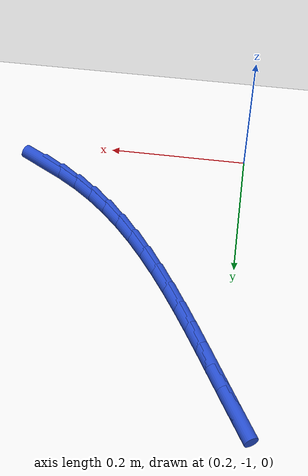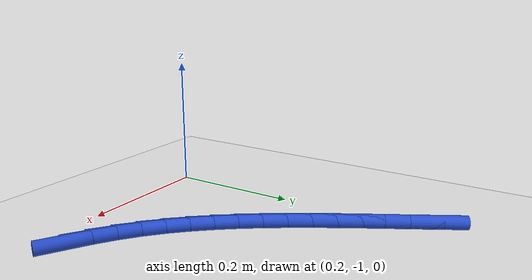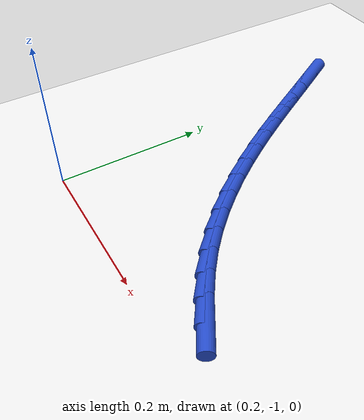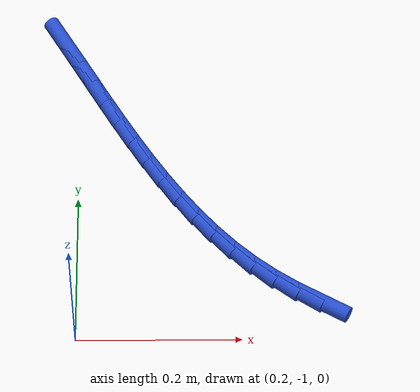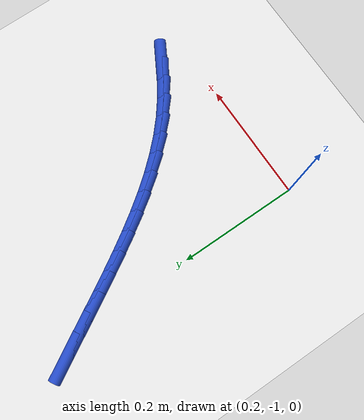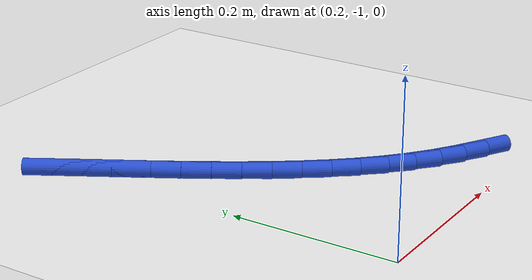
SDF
<sdf version="1.6">
 <world name="default">
  <model name="ground_plane">
   <static>1</static>
   <link name="link">
    <collision name="collision">
     <geometry><plane><normal>0 0 1</normal><size>100 100</size></plane></geometry>
     <surface><friction><ode><mu>100</mu><mu2>50</mu2></ode></friction></surface>
    </collision>
    <visual name="visual">
     <cast_shadows>0</cast_shadows>
     <geometry><plane><normal>0 0 1</normal><size>100 100</size></plane></geometry>
     <material>
      <script><uri>file://media/materials/scripts/gazebo.material</uri><name>Gazebo/WhiteGlow</name></script>
     </material>
    </visual>
   </link>
  </model>
  <model name="line">
   <link name="link_167">
    <pose>0.49299185647787175 -0.9524703437192823 0.01 0 1.57 -0.5233689117288747</pose>
    <collision name="collision">
     <geometry><cylinder><radius>0.01</radius><length>0.08</length></cylinder></geometry>
    </collision>
    <visual name="visual">
     <material>
      <script><name>Gazebo/Blue</name><uri>file://media/materials/scripts/gazebo.material</uri></script>
     </material>
     <geometry><cylinder><radius>0.01</radius><length>0.08</length></cylinder></geometry>
    </visual>
   </link>
   <link name="link_168">
    <pose>0.46502220504970393 -0.9363306290838186 0.01 0 1.57 -0.5859330448053706</pose>
    <collision name="collision">
     <geometry><cylinder><radius>0.01</radius><length>0.08</length></cylinder></geometry>
    </collision>
    <visual name="visual">
     <material>
      <script><name>Gazebo/Blue</name><uri>file://media/materials/scripts/gazebo.material</uri></script>
     </material>
     <geometry><cylinder><radius>0.01</radius><length>0.08</length></cylinder></geometry>
    </visual>
   </link>
   <link name="link_169">
    <pose>0.4383010119840826 -0.9185962697649118 0.01 0 1.57 -0.6582926510266706</pose>
    <collision name="collision">
     <geometry><cylinder><radius>0.01</radius><length>0.08</length></cylinder></geometry>
    </collision>
    <visual name="visual">
     <material>
      <script><name>Gazebo/Blue</name><uri>file://media/materials/scripts/gazebo.material</uri></script>
     </material>
     <geometry><cylinder><radius>0.01</radius><length>0.08</length></cylinder></geometry>
    </visual>
   </link>
   <link name="link_170">
    <pose>0.4129383690495716 -0.8989814921177905 0.01 0 1.57 -0.7319237376201629</pose>
    <collision name="collision">
     <geometry><cylinder><radius>0.01</radius><length>0.08</length></cylinder></geometry>
    </collision>
    <visual name="visual">
     <material>
      <script><name>Gazebo/Blue</name><uri>file://media/materials/scripts/gazebo.material</uri></script>
     </material>
     <geometry><cylinder><radius>0.01</radius><length>0.08</length></cylinder></geometry>
    </visual>
   </link>
   <link name="link_171">
    <pose>0.3889388151313444 -0.8774205827038444 0.01 0 1.57 -0.7976764309506431</pose>
    <collision name="collision">
     <geometry><cylinder><radius>0.01</radius><length>0.08</length></cylinder></geometry>
    </collision>
    <visual name="visual">
     <material>
      <script><name>Gazebo/Blue</name><uri>file://media/materials/scripts/gazebo.material</uri></script>
     </material>
     <geometry><cylinder><radius>0.01</radius><length>0.08</length></cylinder></geometry>
    </visual>
   </link>
   <link name="link_172">
    <pose>0.3661852921539589 -0.8541013375231675 0.01 0 1.57 -0.8550481111767014</pose>
    <collision name="collision">
     <geometry><cylinder><radius>0.01</radius><length>0.08</length></cylinder></geometry>
    </collision>
    <visual name="visual">
     <material>
      <script><name>Gazebo/Blue</name><uri>file://media/materials/scripts/gazebo.material</uri></script>
     </material>
     <geometry><cylinder><radius>0.01</radius><length>0.08</length></cylinder></geometry>
    </visual>
   </link>
   <link name="link_173">
    <pose>0.3445540076250147 -0.8292255927151324 0.01 0 1.57 -0.9042797048978861</pose>
    <collision name="collision">
     <geometry><cylinder><radius>0.01</radius><length>0.08</length></cylinder></geometry>
    </collision>
    <visual name="visual">
     <material>
      <script><name>Gazebo/Blue</name><uri>file://media/materials/scripts/gazebo.material</uri></script>
     </material>
     <geometry><cylinder><radius>0.01</radius><length>0.08</length></cylinder></geometry>
    </visual>
   </link>
   <link name="link_174">
    <pose>0.3239211690521116 -0.8029951844191124 0.01 0 1.57 -0.9457577411286796</pose>
    <collision name="collision">
     <geometry><cylinder><radius>0.01</radius><length>0.08</length></cylinder></geometry>
    </collision>
    <visual name="visual">
     <material>
      <script><name>Gazebo/Blue</name><uri>file://media/materials/scripts/gazebo.material</uri></script>
     </material>
     <geometry><cylinder><radius>0.01</radius><length>0.08</length></cylinder></geometry>
    </visual>
   </link>
   <link name="link_175">
    <pose>0.30416298394284946 -0.7756119487744813 0.01 0 1.57 -0.9799200001994263</pose>
    <collision name="collision">
     <geometry><cylinder><radius>0.01</radius><length>0.08</length></cylinder></geometry>
    </collision>
    <visual name="visual">
     <material>
      <script><name>Gazebo/Blue</name><uri>file://media/materials/scripts/gazebo.material</uri></script>
     </material>
     <geometry><cylinder><radius>0.01</radius><length>0.08</length></cylinder></geometry>
    </visual>
   </link>
   <link name="link_176">
    <pose>0.2851556598048278 -0.7472777219206115 0.01 0 1.57 -1.0071899854872963</pose>
    <collision name="collision">
     <geometry><cylinder><radius>0.01</radius><length>0.08</length></cylinder></geometry>
    </collision>
    <visual name="visual">
     <material>
      <script><name>Gazebo/Blue</name><uri>file://media/materials/scripts/gazebo.material</uri></script>
     </material>
     <geometry><cylinder><radius>0.01</radius><length>0.08</length></cylinder></geometry>
    </visual>
   </link>
   <link name="link_177">
    <pose>0.26677540414564666 -0.7181943399968769 0.01 0 1.57 -1.02793464211569</pose>
    <collision name="collision">
     <geometry><cylinder><radius>0.01</radius><length>0.08</length></cylinder></geometry>
    </collision>
    <visual name="visual">
     <material>
      <script><name>Gazebo/Blue</name><uri>file://media/materials/scripts/gazebo.material</uri></script>
     </material>
     <geometry><cylinder><radius>0.01</radius><length>0.08</length></cylinder></geometry>
    </visual>
   </link>
   <link name="link_178">
    <pose>0.24889842447290556 -0.6885636391426503 0.01 0 1.57 -1.0424384491583016</pose>
    <collision name="collision">
     <geometry><cylinder><radius>0.01</radius><length>0.08</length></cylinder></geometry>
    </collision>
    <visual name="visual">
     <material>
      <script><name>Gazebo/Blue</name><uri>file://media/materials/scripts/gazebo.material</uri></script>
     </material>
     <geometry><cylinder><radius>0.01</radius><length>0.08</length></cylinder></geometry>
    </visual>
   </link>
   <link name="link_179">
    <pose>0.23140092829420428 -0.658587455497305 0.01 0 1.57 -1.0508878451054124</pose>
    <collision name="collision">
     <geometry><cylinder><radius>0.01</radius><length>0.08</length></cylinder></geometry>
    </collision>
    <visual name="visual">
     <material>
      <script><name>Gazebo/Blue</name><uri>file://media/materials/scripts/gazebo.material</uri></script>
     </material>
     <geometry><cylinder><radius>0.01</radius><length>0.08</length></cylinder></geometry>
    </visual>
   </link>
   <link name="link_180">
    <pose>0.21415912311714255 -0.628467625200214 0.01 0 1.57 -1.0533614550405648</pose>
    <collision name="collision">
     <geometry><cylinder><radius>0.01</radius><length>0.08</length></cylinder></geometry>
    </collision>
    <visual name="visual">
     <material>
      <script><name>Gazebo/Blue</name><uri>file://media/materials/scripts/gazebo.material</uri></script>
     </material>
     <geometry><cylinder><radius>0.01</radius><length>0.08</length></cylinder></geometry>
    </visual>
   </link>
   <link name="link_181">
    <pose>0.19704921644932022 -0.598405984390751 0.01 0 1.57 -1.050322009710444</pose>
    <collision name="collision">
     <geometry><cylinder><radius>0.01</radius><length>0.08</length></cylinder></geometry>
    </collision>
    <visual name="visual">
     <material>
      <script><name>Gazebo/Blue</name><uri>file://media/materials/scripts/gazebo.material</uri></script>
     </material>
     <geometry><cylinder><radius>0.01</radius><length>0.08</length></cylinder></geometry>
    </visual>
   </link>
   <link name="link_182">
    <pose>0.17995919032913613 -0.5685904396651804 0.01 0 1.57 -1.047978918736261</pose>
    <collision name="collision">
     <geometry><cylinder><radius>0.01</radius><length>0.08</length></cylinder></geometry>
    </collision>
    <visual name="visual">
     <material>
      <script><name>Gazebo/Blue</name><uri>file://media/materials/scripts/gazebo.material</uri></script>
     </material>
     <geometry><cylinder><radius>0.01</radius><length>0.08</length></cylinder></geometry>
    </visual>
   </link>
  </model>
 </world>
</sdf>
